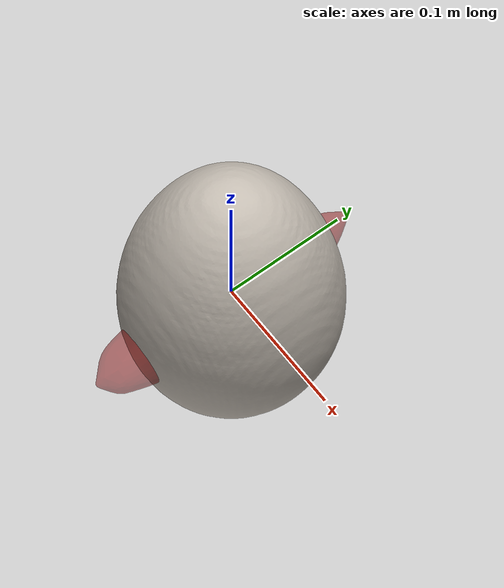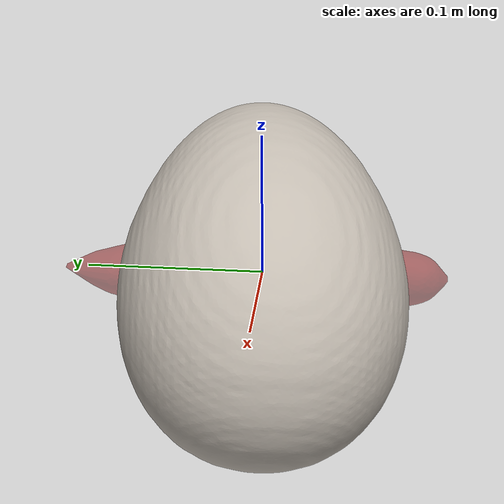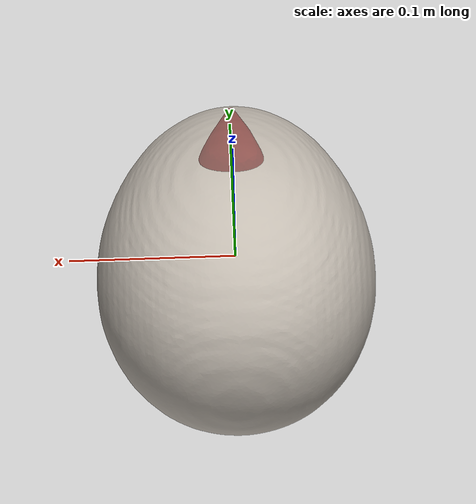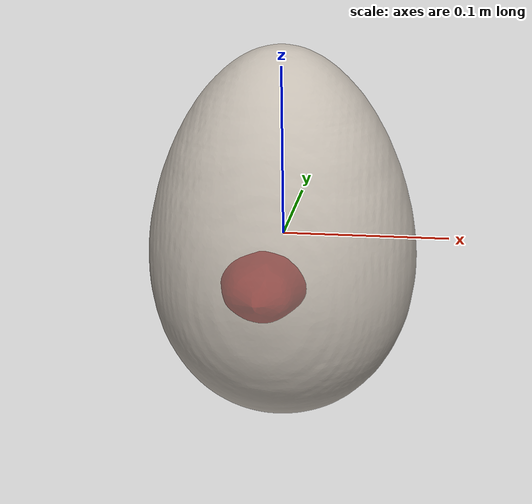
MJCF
<?xml version='1.0' encoding='utf-8'?>
<mujoco model="baguette_9">
  <asset>
    <mesh file="visual/model_normalized_0.obj" name="model_normalized_0_vis" scale="0.22500000000000003 0.22500000000000003 0.22500000000000003" refquat="0.7071067811865475 -3.925231146709438e-17 3.925231146709437e-17 0.7071067811865476" />
    <mesh file="visual/model_normalized_1.obj" name="model_normalized_1_vis" scale="0.22500000000000003 0.22500000000000003 0.22500000000000003" refquat="0.7071067811865475 -3.925231146709438e-17 3.925231146709437e-17 0.7071067811865476" />
    <texture type="2d" name="image0" file="visual/image0.png" />
    <material name="Bread.003" texture="image0" specular="0.5" shininess="0.25" />
    <material name="Line.001" texture="image0" specular="0.5" shininess="0.0" />
    <mesh file="collision/collision_mesh_collision_0.obj" name="baguette_collision_mesh_0" scale="0.22500000000000003 0.22500000000000003 0.22500000000000003" refquat="0.7071067811865475 -3.925231146709438e-17 3.925231146709437e-17 0.7071067811865476" />
    <mesh file="collision/collision_mesh_collision_1.obj" name="baguette_collision_mesh_1" scale="0.22500000000000003 0.22500000000000003 0.22500000000000003" refquat="0.7071067811865475 -3.925231146709438e-17 3.925231146709437e-17 0.7071067811865476" />
    <mesh file="collision/collision_mesh_collision_2.obj" name="baguette_collision_mesh_2" scale="0.22500000000000003 0.22500000000000003 0.22500000000000003" refquat="0.7071067811865475 -3.925231146709438e-17 3.925231146709437e-17 0.7071067811865476" />
    </asset>
  <custom><text name="material_gt" data="bread"/></custom>
  <default>
    <default class="region">
      <geom group="1" conaffinity="0" contype="0" rgba="0 1 0 0" />
      </default>
    <default class="collision">
      <geom group="0" rgba="0.5 0 0 0.5" density="1000.0" />
      </default>
    </default>
  <worldbody>
    <body>
      <body name="object">
        <geom solimp="0.998 0.998 0.001" solref="0.001 1" density="100" friction="0.95 0.3 0.1" type="mesh" mesh="model_normalized_0_vis" conaffinity="0" contype="0" group="1" material="Line.001" />
        <geom solimp="0.998 0.998 0.001" solref="0.001 1" density="100" friction="0.95 0.3 0.1" type="mesh" mesh="model_normalized_1_vis" conaffinity="0" contype="0" group="1" material="Bread.003" />
        <geom class="region" name="reg_bbox" type="box" pos="-7.002899999999942e-05 0.0003154949999999983 -6.218100000000143e-05" size="0.023359905000000007 0.11214067500000002 0.016776166500000002" />
        <geom mesh="baguette_collision_mesh_0" type="mesh" class="collision" />
        <geom mesh="baguette_collision_mesh_1" type="mesh" class="collision" />
        <geom mesh="baguette_collision_mesh_2" type="mesh" class="collision" />
        </body>
      </body>
    </worldbody>
  </mujoco>
